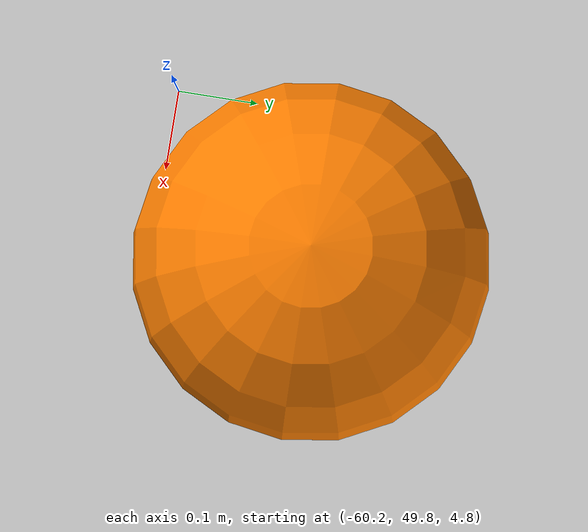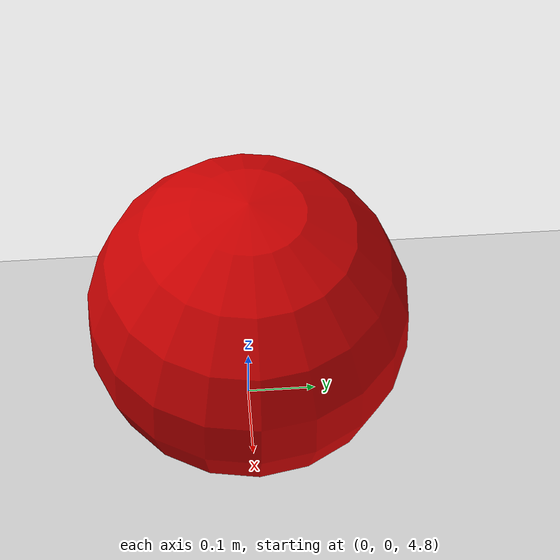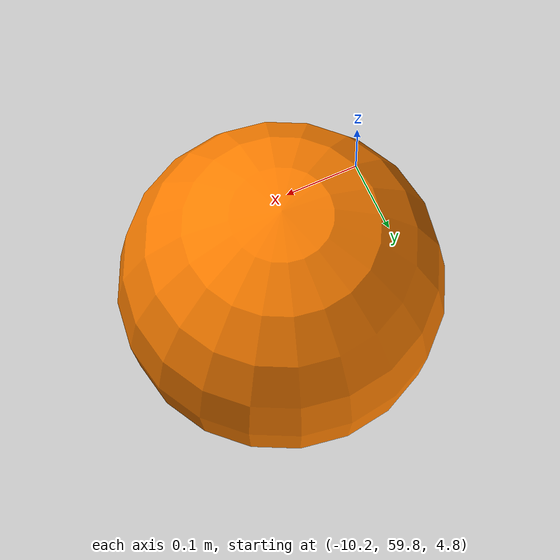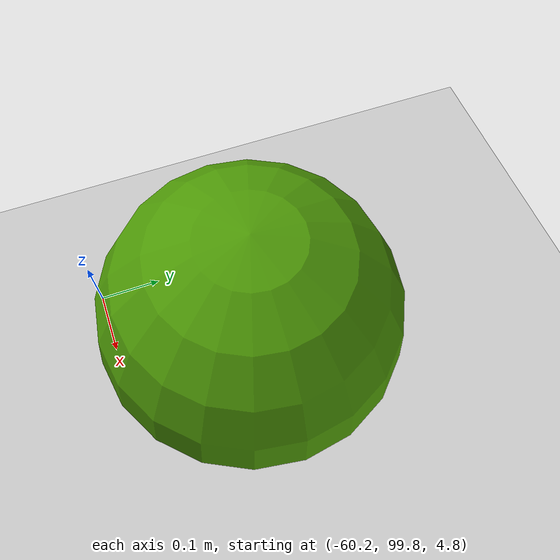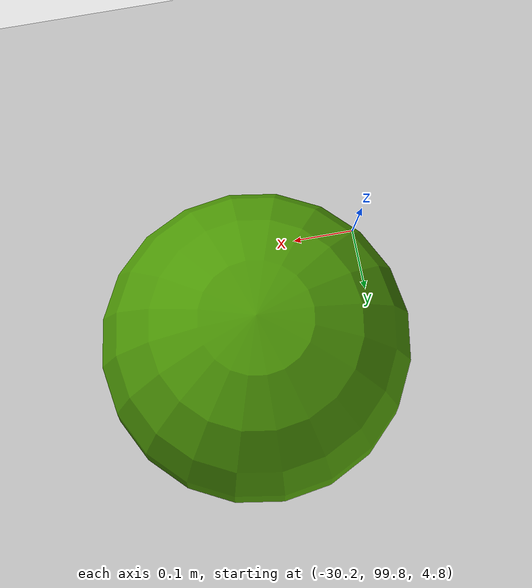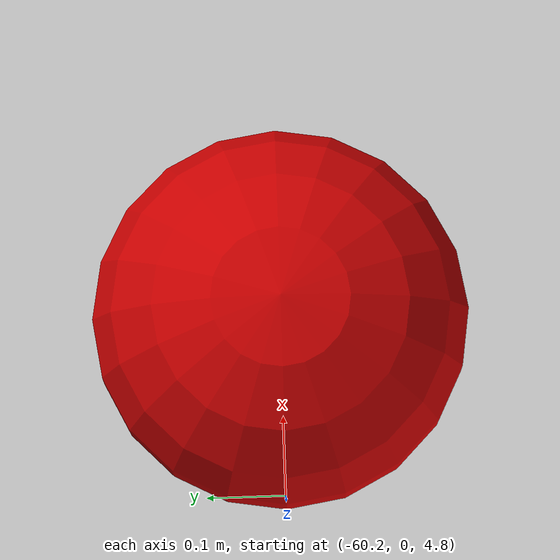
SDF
<sdf version="1.5">
 <world name="default">
  <physics type="ode">
   <ode>
    <solver><type>quick</type><iters>100</iters><sor>1.0</sor></solver>
    <constraints>
     <cfm>0.0</cfm>
     <erp>0.9</erp>
     <contact_max_correcting_vel>0.1</contact_max_correcting_vel>
     <contact_surface_layer>0.0</contact_surface_layer>
    </constraints>
   </ode>
   <real_time_update_rate>-1</real_time_update_rate>
  </physics>
  <model name="ground_plane">
   <static>true</static>
   <link name="link">
    <collision name="collision">
     <geometry><plane><normal>0 0 1</normal><size>5000 5000</size></plane></geometry>
     <surface><friction><ode><mu>1</mu><mu2>1</mu2></ode></friction></surface>
    </collision>
    <visual name="runway1">
     <pose>000 0 0.005 0 0 0</pose>
     <cast_shadows>false</cast_shadows>
     <geometry><plane><normal>0 0 1</normal><size>1829 45</size></plane></geometry>
     <material>
      <script><uri>file://media/materials/scripts/gazebo.material</uri><name>Gazebo/Runway</name></script>
     </material>
    </visual>
    <visual name="runway2">
     <pose>0 50 0.005 0 0 0</pose>
     <cast_shadows>false</cast_shadows>
     <geometry><plane><normal>0 0 1</normal><size>1829 45</size></plane></geometry>
     <material>
      <script><uri>file://media/materials/scripts/gazebo.material</uri><name>Gazebo/Runway</name></script>
     </material>
    </visual>
    <visual name="runway3">
     <pose>0 100 0.005 0 0 0</pose>
     <cast_shadows>false</cast_shadows>
     <geometry><plane><normal>0 0 1</normal><size>1829 45</size></plane></geometry>
     <material>
      <script><uri>file://media/materials/scripts/gazebo.material</uri><name>Gazebo/Runway</name></script>
     </material>
    </visual>
    <visual name="grass">
     <pose>0 0 -0.1 0 0 0</pose>
     <cast_shadows>false</cast_shadows>
     <geometry><plane><normal>0 0 1</normal><size>5000 5000</size></plane></geometry>
     <material>
      <script><uri>file://media/materials/scripts/gazebo.material</uri><name>Gazebo/Grass</name></script>
     </material>
    </visual>
   </link>
  </model>
  <include><uri>model://sun</uri></include>
  <model name="waypoint_0.0">
   <pose>0.0 0.0 5 0 0 0</pose>
   <link name="link">
    <inertial>
     <inertia><ixx>0.1</ixx><ixy>0</ixy><ixz>0</ixz><iyy>0.1</iyy><iyz>0</iyz><izz>0.1</izz></inertia>
     <mass>1</mass>
    </inertial>
    <gravity>0</gravity>
    <visual name="visual">
     <geometry><sphere><radius>0.2</radius></sphere></geometry>
     <material>
      <script><name>Gazebo/Grey</name><uri>file://media/materials/scripts/gazebo.material</uri></script>
      <shader type="pixel"><normal_map>__default__</normal_map></shader>
      <ambient>0.3 0.3 0.3 1</ambient>
      <diffuse>0.8 0.0 0.0 1</diffuse>
      <specular>0.01 0.01 0.01 1</specular>
      <emissive>0 0 0 1</emissive>
     </material>
     <transparency>0.05</transparency>
    </visual>
   </link>
   <static>0</static>
  </model>
  <model name="waypoint_0.1">
   <pose>-10.0 6.123233995736766e-16 5 0 0 0</pose>
   <link name="link">
    <inertial>
     <inertia><ixx>0.1</ixx><ixy>0</ixy><ixz>0</ixz><iyy>0.1</iyy><iyz>0</iyz><izz>0.1</izz></inertia>
     <mass>1</mass>
    </inertial>
    <gravity>0</gravity>
    <visual name="visual">
     <geometry><sphere><radius>0.2</radius></sphere></geometry>
     <material>
      <script><name>Gazebo/Grey</name><uri>file://media/materials/scripts/gazebo.material</uri></script>
      <shader type="pixel"><normal_map>__default__</normal_map></shader>
      <ambient>0.3 0.3 0.3 1</ambient>
      <diffuse>0.8 0.0 0.0 1</diffuse>
      <specular>0.01 0.01 0.01 1</specular>
      <emissive>0 0 0 1</emissive>
     </material>
     <transparency>0.05</transparency>
    </visual>
   </link>
   <static>0</static>
  </model>
  <model name="waypoint_0.2">
   <pose>-10.0 10.0 5 0 0 0</pose>
   <link name="link">
    <inertial>
     <inertia><ixx>0.1</ixx><ixy>0</ixy><ixz>0</ixz><iyy>0.1</iyy><iyz>0</iyz><izz>0.1</izz></inertia>
     <mass>1</mass>
    </inertial>
    <gravity>0</gravity>
    <visual name="visual">
     <geometry><sphere><radius>0.2</radius></sphere></geometry>
     <material>
      <script><name>Gazebo/Grey</name><uri>file://media/materials/scripts/gazebo.material</uri></script>
      <shader type="pixel"><normal_map>__default__</normal_map></shader>
      <ambient>0.3 0.3 0.3 1</ambient>
      <diffuse>0.8 0.0 0.0 1</diffuse>
      <specular>0.01 0.01 0.01 1</specular>
      <emissive>0 0 0 1</emissive>
     </material>
     <transparency>0.05</transparency>
    </visual>
   </link>
   <static>0</static>
  </model>
  <model name="waypoint_0.3">
   <pose>6.123233995736766e-16 10.0 5 0 0 0</pose>
   <link name="link">
    <inertial>
     <inertia><ixx>0.1</ixx><ixy>0</ixy><ixz>0</ixz><iyy>0.1</iyy><iyz>0</iyz><izz>0.1</izz></inertia>
     <mass>1</mass>
    </inertial>
    <gravity>0</gravity>
    <visual name="visual">
     <geometry><sphere><radius>0.2</radius></sphere></geometry>
     <material>
      <script><name>Gazebo/Grey</name><uri>file://media/materials/scripts/gazebo.material</uri></script>
      <shader type="pixel"><normal_map>__default__</normal_map></shader>
      <ambient>0.3 0.3 0.3 1</ambient>
      <diffuse>0.8 0.0 0.0 1</diffuse>
      <specular>0.01 0.01 0.01 1</specular>
      <emissive>0 0 0 1</emissive>
     </material>
     <transparency>0.05</transparency>
    </visual>
   </link>
   <static>0</static>
  </model>
  <model name="waypoint_0.4">
   <pose>0.0 0.0 5 0 0 0</pose>
   <link name="link">
    <inertial>
     <inertia><ixx>0.1</ixx><ixy>0</ixy><ixz>0</ixz><iyy>0.1</iyy><iyz>0</iyz><izz>0.1</izz></inertia>
     <mass>1</mass>
    </inertial>
    <gravity>0</gravity>
    <visual name="visual">
     <geometry><sphere><radius>0.2</radius></sphere></geometry>
     <material>
      <script><name>Gazebo/Grey</name><uri>file://media/materials/scripts/gazebo.material</uri></script>
      <shader type="pixel"><normal_map>__default__</normal_map></shader>
      <ambient>0.3 0.3 0.3 1</ambient>
      <diffuse>0.8 0.0 0.0 1</diffuse>
      <specular>0.01 0.01 0.01 1</specular>
      <emissive>0 0 0 1</emissive>
     </material>
     <transparency>0.05</transparency>
    </visual>
   </link>
   <static>0</static>
  </model>
  <model name="waypoint_1.0">
   <pose>-30.0 1.83697019872103e-15 5 0 0 0</pose>
   <link name="link">
    <inertial>
     <inertia><ixx>0.1</ixx><ixy>0</ixy><ixz>0</ixz><iyy>0.1</iyy><iyz>0</iyz><izz>0.1</izz></inertia>
     <mass>1</mass>
    </inertial>
    <gravity>0</gravity>
    <visual name="visual">
     <geometry><sphere><radius>0.2</radius></sphere></geometry>
     <material>
      <script><name>Gazebo/Grey</name><uri>file://media/materials/scripts/gazebo.material</uri></script>
      <shader type="pixel"><normal_map>__default__</normal_map></shader>
      <ambient>0.3 0.3 0.3 1</ambient>
      <diffuse>0.8 0.0 0.0 1</diffuse>
      <specular>0.01 0.01 0.01 1</specular>
      <emissive>0 0 0 1</emissive>
     </material>
     <transparency>0.05</transparency>
    </visual>
   </link>
   <static>0</static>
  </model>
  <model name="waypoint_1.1">
   <pose>-40.0 2.4492935982947065e-15 5 0 0 0</pose>
   <link name="link">
    <inertial>
     <inertia><ixx>0.1</ixx><ixy>0</ixy><ixz>0</ixz><iyy>0.1</iyy><iyz>0</iyz><izz>0.1</izz></inertia>
     <mass>1</mass>
    </inertial>
    <gravity>0</gravity>
    <visual name="visual">
     <geometry><sphere><radius>0.2</radius></sphere></geometry>
     <material>
      <script><name>Gazebo/Grey</name><uri>file://media/materials/scripts/gazebo.material</uri></script>
      <shader type="pixel"><normal_map>__default__</normal_map></shader>
      <ambient>0.3 0.3 0.3 1</ambient>
      <diffuse>0.8 0.0 0.0 1</diffuse>
      <specular>0.01 0.01 0.01 1</specular>
      <emissive>0 0 0 1</emissive>
     </material>
     <transparency>0.05</transparency>
    </visual>
   </link>
   <static>0</static>
  </model>
  <model name="waypoint_1.2">
   <pose>-40.0 10.000000000000002 5 0 0 0</pose>
   <link name="link">
    <inertial>
     <inertia><ixx>0.1</ixx><ixy>0</ixy><ixz>0</ixz><iyy>0.1</iyy><iyz>0</iyz><izz>0.1</izz></inertia>
     <mass>1</mass>
    </inertial>
    <gravity>0</gravity>
    <visual name="visual">
     <geometry><sphere><radius>0.2</radius></sphere></geometry>
     <material>
      <script><name>Gazebo/Grey</name><uri>file://media/materials/scripts/gazebo.material</uri></script>
      <shader type="pixel"><normal_map>__default__</normal_map></shader>
      <ambient>0.3 0.3 0.3 1</ambient>
      <diffuse>0.8 0.0 0.0 1</diffuse>
      <specular>0.01 0.01 0.01 1</specular>
      <emissive>0 0 0 1</emissive>
     </material>
     <transparency>0.05</transparency>
    </visual>
   </link>
   <static>0</static>
  </model>
  <model name="waypoint_1.3">
   <pose>-30.0 10.000000000000002 5 0 0 0</pose>
   <link name="link">
    <inertial>
     <inertia><ixx>0.1</ixx><ixy>0</ixy><ixz>0</ixz><iyy>0.1</iyy><iyz>0</iyz><izz>0.1</izz></inertia>
     <mass>1</mass>
    </inertial>
    <gravity>0</gravity>
    <visual name="visual">
     <geometry><sphere><radius>0.2</radius></sphere></geometry>
     <material>
      <script><name>Gazebo/Grey</name><uri>file://media/materials/scripts/gazebo.material</uri></script>
      <shader type="pixel"><normal_map>__default__</normal_map></shader>
      <ambient>0.3 0.3 0.3 1</ambient>
      <diffuse>0.8 0.0 0.0 1</diffuse>
      <specular>0.01 0.01 0.01 1</specular>
      <emissive>0 0 0 1</emissive>
     </material>
     <transparency>0.05</transparency>
    </visual>
   </link>
   <static>0</static>
  </model>
  <model name="waypoint_1.4">
   <pose>-30.0 1.83697019872103e-15 5 0 0 0</pose>
   <link name="link">
    <inertial>
     <inertia><ixx>0.1</ixx><ixy>0</ixy><ixz>0</ixz><iyy>0.1</iyy><iyz>0</iyz><izz>0.1</izz></inertia>
     <mass>1</mass>
    </inertial>
    <gravity>0</gravity>
    <visual name="visual">
     <geometry><sphere><radius>0.2</radius></sphere></geometry>
     <material>
      <script><name>Gazebo/Grey</name><uri>file://media/materials/scripts/gazebo.material</uri></script>
      <shader type="pixel"><normal_map>__default__</normal_map></shader>
      <ambient>0.3 0.3 0.3 1</ambient>
      <diffuse>0.8 0.0 0.0 1</diffuse>
      <specular>0.01 0.01 0.01 1</specular>
      <emissive>0 0 0 1</emissive>
     </material>
     <transparency>0.05</transparency>
    </visual>
   </link>
   <static>0</static>
  </model>
  <model name="waypoint_2.0">
   <pose>-60.0 3.67394039744206e-15 5 0 0 0</pose>
   <link name="link">
    <inertial>
     <inertia><ixx>0.1</ixx><ixy>0</ixy><ixz>0</ixz><iyy>0.1</iyy><iyz>0</iyz><izz>0.1</izz></inertia>
     <mass>1</mass>
    </inertial>
    <gravity>0</gravity>
    <visual name="visual">
     <geometry><sphere><radius>0.2</radius></sphere></geometry>
     <material>
      <script><name>Gazebo/Grey</name><uri>file://media/materials/scripts/gazebo.material</uri></script>
      <shader type="pixel"><normal_map>__default__</normal_map></shader>
      <ambient>0.3 0.3 0.3 1</ambient>
      <diffuse>0.8 0.0 0.0 1</diffuse>
      <specular>0.01 0.01 0.01 1</specular>
      <emissive>0 0 0 1</emissive>
     </material>
     <transparency>0.05</transparency>
    </visual>
   </link>
   <static>0</static>
  </model>
  <model name="waypoint_2.1">
   <pose>-70.0 4.2862637970157365e-15 5 0 0 0</pose>
   <link name="link">
    <inertial>
     <inertia><ixx>0.1</ixx><ixy>0</ixy><ixz>0</ixz><iyy>0.1</iyy><iyz>0</iyz><izz>0.1</izz></inertia>
     <mass>1</mass>
    </inertial>
    <gravity>0</gravity>
    <visual name="visual">
     <geometry><sphere><radius>0.2</radius></sphere></geometry>
     <material>
      <script><name>Gazebo/Grey</name><uri>file://media/materials/scripts/gazebo.material</uri></script>
      <shader type="pixel"><normal_map>__default__</normal_map></shader>
      <ambient>0.3 0.3 0.3 1</ambient>
      <diffuse>0.8 0.0 0.0 1</diffuse>
      <specular>0.01 0.01 0.01 1</specular>
      <emissive>0 0 0 1</emissive>
     </material>
     <transparency>0.05</transparency>
    </visual>
   </link>
   <static>0</static>
  </model>
  <model name="waypoint_2.2">
   <pose>-70.0 10.000000000000004 5 0 0 0</pose>
   <link name="link">
    <inertial>
     <inertia><ixx>0.1</ixx><ixy>0</ixy><ixz>0</ixz><iyy>0.1</iyy><iyz>0</iyz><izz>0.1</izz></inertia>
     <mass>1</mass>
    </inertial>
    <gravity>0</gravity>
    <visual name="visual">
     <geometry><sphere><radius>0.2</radius></sphere></geometry>
     <material>
      <script><name>Gazebo/Grey</name><uri>file://media/materials/scripts/gazebo.material</uri></script>
      <shader type="pixel"><normal_map>__default__</normal_map></shader>
      <ambient>0.3 0.3 0.3 1</ambient>
      <diffuse>0.8 0.0 0.0 1</diffuse>
      <specular>0.01 0.01 0.01 1</specular>
      <emissive>0 0 0 1</emissive>
     </material>
     <transparency>0.05</transparency>
    </visual>
   </link>
   <static>0</static>
  </model>
  <model name="waypoint_2.3">
   <pose>-60.0 10.000000000000004 5 0 0 0</pose>
   <link name="link">
    <inertial>
     <inertia><ixx>0.1</ixx><ixy>0</ixy><ixz>0</ixz><iyy>0.1</iyy><iyz>0</iyz><izz>0.1</izz></inertia>
     <mass>1</mass>
    </inertial>
    <gravity>0</gravity>
    <visual name="visual">
     <geometry><sphere><radius>0.2</radius></sphere></geometry>
     <material>
      <script><name>Gazebo/Grey</name><uri>file://media/materials/scripts/gazebo.material</uri></script>
      <shader type="pixel"><normal_map>__default__</normal_map></shader>
      <ambient>0.3 0.3 0.3 1</ambient>
      <diffuse>0.8 0.0 0.0 1</diffuse>
      <specular>0.01 0.01 0.01 1</specular>
      <emissive>0 0 0 1</emissive>
     </material>
     <transparency>0.05</transparency>
    </visual>
   </link>
   <static>0</static>
  </model>
  <model name="waypoint_2.4">
   <pose>-60.0 3.67394039744206e-15 5 0 0 0</pose>
   <link name="link">
    <inertial>
     <inertia><ixx>0.1</ixx><ixy>0</ixy><ixz>0</ixz><iyy>0.1</iyy><iyz>0</iyz><izz>0.1</izz></inertia>
     <mass>1</mass>
    </inertial>
    <gravity>0</gravity>
    <visual name="visual">
     <geometry><sphere><radius>0.2</radius></sphere></geometry>
     <material>
      <script><name>Gazebo/Grey</name><uri>file://media/materials/scripts/gazebo.material</uri></script>
      <shader type="pixel"><normal_map>__default__</normal_map></shader>
      <ambient>0.3 0.3 0.3 1</ambient>
      <diffuse>0.8 0.0 0.0 1</diffuse>
      <specular>0.01 0.01 0.01 1</specular>
      <emissive>0 0 0 1</emissive>
     </material>
     <transparency>0.05</transparency>
    </visual>
   </link>
   <static>0</static>
  </model>
  <model name="waypoint_3.0">
   <pose>3.061616997868383e-15 50.0 5 0 0 0</pose>
   <link name="link">
    <inertial>
     <inertia><ixx>0.1</ixx><ixy>0</ixy><ixz>0</ixz><iyy>0.1</iyy><iyz>0</iyz><izz>0.1</izz></inertia>
     <mass>1</mass>
    </inertial>
    <gravity>0</gravity>
    <visual name="visual">
     <geometry><sphere><radius>0.2</radius></sphere></geometry>
     <material>
      <script><name>Gazebo/Grey</name><uri>file://media/materials/scripts/gazebo.material</uri></script>
      <shader type="pixel"><normal_map>__default__</normal_map></shader>
      <ambient>0.3 0.3 0.3 1</ambient>
      <diffuse>1.0 0.5 0.0 1</diffuse>
      <specular>0.01 0.01 0.01 1</specular>
      <emissive>0 0 0 1</emissive>
     </material>
     <transparency>0.05</transparency>
    </visual>
   </link>
   <static>0</static>
  </model>
  <model name="waypoint_3.1">
   <pose>-9.999999999999996 50.0 5 0 0 0</pose>
   <link name="link">
    <inertial>
     <inertia><ixx>0.1</ixx><ixy>0</ixy><ixz>0</ixz><iyy>0.1</iyy><iyz>0</iyz><izz>0.1</izz></inertia>
     <mass>1</mass>
    </inertial>
    <gravity>0</gravity>
    <visual name="visual">
     <geometry><sphere><radius>0.2</radius></sphere></geometry>
     <material>
      <script><name>Gazebo/Grey</name><uri>file://media/materials/scripts/gazebo.material</uri></script>
      <shader type="pixel"><normal_map>__default__</normal_map></shader>
      <ambient>0.3 0.3 0.3 1</ambient>
      <diffuse>1.0 0.5 0.0 1</diffuse>
      <specular>0.01 0.01 0.01 1</specular>
      <emissive>0 0 0 1</emissive>
     </material>
     <transparency>0.05</transparency>
    </visual>
   </link>
   <static>0</static>
  </model>
  <model name="waypoint_3.2">
   <pose>-9.999999999999996 60.0 5 0 0 0</pose>
   <link name="link">
    <inertial>
     <inertia><ixx>0.1</ixx><ixy>0</ixy><ixz>0</ixz><iyy>0.1</iyy><iyz>0</iyz><izz>0.1</izz></inertia>
     <mass>1</mass>
    </inertial>
    <gravity>0</gravity>
    <visual name="visual">
     <geometry><sphere><radius>0.2</radius></sphere></geometry>
     <material>
      <script><name>Gazebo/Grey</name><uri>file://media/materials/scripts/gazebo.material</uri></script>
      <shader type="pixel"><normal_map>__default__</normal_map></shader>
      <ambient>0.3 0.3 0.3 1</ambient>
      <diffuse>1.0 0.5 0.0 1</diffuse>
      <specular>0.01 0.01 0.01 1</specular>
      <emissive>0 0 0 1</emissive>
     </material>
     <transparency>0.05</transparency>
    </visual>
   </link>
   <static>0</static>
  </model>
  <model name="waypoint_3.3">
   <pose>3.67394039744206e-15 60.0 5 0 0 0</pose>
   <link name="link">
    <inertial>
     <inertia><ixx>0.1</ixx><ixy>0</ixy><ixz>0</ixz><iyy>0.1</iyy><iyz>0</iyz><izz>0.1</izz></inertia>
     <mass>1</mass>
    </inertial>
    <gravity>0</gravity>
    <visual name="visual">
     <geometry><sphere><radius>0.2</radius></sphere></geometry>
     <material>
      <script><name>Gazebo/Grey</name><uri>file://media/materials/scripts/gazebo.material</uri></script>
      <shader type="pixel"><normal_map>__default__</normal_map></shader>
      <ambient>0.3 0.3 0.3 1</ambient>
      <diffuse>1.0 0.5 0.0 1</diffuse>
      <specular>0.01 0.01 0.01 1</specular>
      <emissive>0 0 0 1</emissive>
     </material>
     <transparency>0.05</transparency>
    </visual>
   </link>
   <static>0</static>
  </model>
  <model name="waypoint_3.4">
   <pose>3.061616997868383e-15 50.0 5 0 0 0</pose>
   <link name="link">
    <inertial>
     <inertia><ixx>0.1</ixx><ixy>0</ixy><ixz>0</ixz><iyy>0.1</iyy><iyz>0</iyz><izz>0.1</izz></inertia>
     <mass>1</mass>
    </inertial>
    <gravity>0</gravity>
    <visual name="visual">
     <geometry><sphere><radius>0.2</radius></sphere></geometry>
     <material>
      <script><name>Gazebo/Grey</name><uri>file://media/materials/scripts/gazebo.material</uri></script>
      <shader type="pixel"><normal_map>__default__</normal_map></shader>
      <ambient>0.3 0.3 0.3 1</ambient>
      <diffuse>1.0 0.5 0.0 1</diffuse>
      <specular>0.01 0.01 0.01 1</specular>
      <emissive>0 0 0 1</emissive>
     </material>
     <transparency>0.05</transparency>
    </visual>
   </link>
   <static>0</static>
  </model>
  <model name="waypoint_4.0">
   <pose>-29.999999999999996 50.0 5 0 0 0</pose>
   <link name="link">
    <inertial>
     <inertia><ixx>0.1</ixx><ixy>0</ixy><ixz>0</ixz><iyy>0.1</iyy><iyz>0</iyz><izz>0.1</izz></inertia>
     <mass>1</mass>
    </inertial>
    <gravity>0</gravity>
    <visual name="visual">
     <geometry><sphere><radius>0.2</radius></sphere></geometry>
     <material>
      <script><name>Gazebo/Grey</name><uri>file://media/materials/scripts/gazebo.material</uri></script>
      <shader type="pixel"><normal_map>__default__</normal_map></shader>
      <ambient>0.3 0.3 0.3 1</ambient>
      <diffuse>1.0 0.5 0.0 1</diffuse>
      <specular>0.01 0.01 0.01 1</specular>
      <emissive>0 0 0 1</emissive>
     </material>
     <transparency>0.05</transparency>
    </visual>
   </link>
   <static>0</static>
  </model>
  <model name="waypoint_4.1">
   <pose>-40.0 50.0 5 0 0 0</pose>
   <link name="link">
    <inertial>
     <inertia><ixx>0.1</ixx><ixy>0</ixy><ixz>0</ixz><iyy>0.1</iyy><iyz>0</iyz><izz>0.1</izz></inertia>
     <mass>1</mass>
    </inertial>
    <gravity>0</gravity>
    <visual name="visual">
     <geometry><sphere><radius>0.2</radius></sphere></geometry>
     <material>
      <script><name>Gazebo/Grey</name><uri>file://media/materials/scripts/gazebo.material</uri></script>
      <shader type="pixel"><normal_map>__default__</normal_map></shader>
      <ambient>0.3 0.3 0.3 1</ambient>
      <diffuse>1.0 0.5 0.0 1</diffuse>
      <specular>0.01 0.01 0.01 1</specular>
      <emissive>0 0 0 1</emissive>
     </material>
     <transparency>0.05</transparency>
    </visual>
   </link>
   <static>0</static>
  </model>
  <model name="waypoint_4.2">
   <pose>-39.99999999999999 60.0 5 0 0 0</pose>
   <link name="link">
    <inertial>
     <inertia><ixx>0.1</ixx><ixy>0</ixy><ixz>0</ixz><iyy>0.1</iyy><iyz>0</iyz><izz>0.1</izz></inertia>
     <mass>1</mass>
    </inertial>
    <gravity>0</gravity>
    <visual name="visual">
     <geometry><sphere><radius>0.2</radius></sphere></geometry>
     <material>
      <script><name>Gazebo/Grey</name><uri>file://media/materials/scripts/gazebo.material</uri></script>
      <shader type="pixel"><normal_map>__default__</normal_map></shader>
      <ambient>0.3 0.3 0.3 1</ambient>
      <diffuse>1.0 0.5 0.0 1</diffuse>
      <specular>0.01 0.01 0.01 1</specular>
      <emissive>0 0 0 1</emissive>
     </material>
     <transparency>0.05</transparency>
    </visual>
   </link>
   <static>0</static>
  </model>
  <model name="waypoint_4.3">
   <pose>-29.999999999999996 60.0 5 0 0 0</pose>
   <link name="link">
    <inertial>
     <inertia><ixx>0.1</ixx><ixy>0</ixy><ixz>0</ixz><iyy>0.1</iyy><iyz>0</iyz><izz>0.1</izz></inertia>
     <mass>1</mass>
    </inertial>
    <gravity>0</gravity>
    <visual name="visual">
     <geometry><sphere><radius>0.2</radius></sphere></geometry>
     <material>
      <script><name>Gazebo/Grey</name><uri>file://media/materials/scripts/gazebo.material</uri></script>
      <shader type="pixel"><normal_map>__default__</normal_map></shader>
      <ambient>0.3 0.3 0.3 1</ambient>
      <diffuse>1.0 0.5 0.0 1</diffuse>
      <specular>0.01 0.01 0.01 1</specular>
      <emissive>0 0 0 1</emissive>
     </material>
     <transparency>0.05</transparency>
    </visual>
   </link>
   <static>0</static>
  </model>
  <model name="waypoint_4.4">
   <pose>-29.999999999999996 50.0 5 0 0 0</pose>
   <link name="link">
    <inertial>
     <inertia><ixx>0.1</ixx><ixy>0</ixy><ixz>0</ixz><iyy>0.1</iyy><iyz>0</iyz><izz>0.1</izz></inertia>
     <mass>1</mass>
    </inertial>
    <gravity>0</gravity>
    <visual name="visual">
     <geometry><sphere><radius>0.2</radius></sphere></geometry>
     <material>
      <script><name>Gazebo/Grey</name><uri>file://media/materials/scripts/gazebo.material</uri></script>
      <shader type="pixel"><normal_map>__default__</normal_map></shader>
      <ambient>0.3 0.3 0.3 1</ambient>
      <diffuse>1.0 0.5 0.0 1</diffuse>
      <specular>0.01 0.01 0.01 1</specular>
      <emissive>0 0 0 1</emissive>
     </material>
     <transparency>0.05</transparency>
    </visual>
   </link>
   <static>0</static>
  </model>
  <model name="waypoint_5.0">
   <pose>-60.0 50.00000000000001 5 0 0 0</pose>
   <link name="link">
    <inertial>
     <inertia><ixx>0.1</ixx><ixy>0</ixy><ixz>0</ixz><iyy>0.1</iyy><iyz>0</iyz><izz>0.1</izz></inertia>
     <mass>1</mass>
    </inertial>
    <gravity>0</gravity>
    <visual name="visual">
     <geometry><sphere><radius>0.2</radius></sphere></geometry>
     <material>
      <script><name>Gazebo/Grey</name><uri>file://media/materials/scripts/gazebo.material</uri></script>
      <shader type="pixel"><normal_map>__default__</normal_map></shader>
      <ambient>0.3 0.3 0.3 1</ambient>
      <diffuse>1.0 0.5 0.0 1</diffuse>
      <specular>0.01 0.01 0.01 1</specular>
      <emissive>0 0 0 1</emissive>
     </material>
     <transparency>0.05</transparency>
    </visual>
   </link>
   <static>0</static>
  </model>
  <model name="waypoint_5.1">
   <pose>-70.0 50.00000000000001 5 0 0 0</pose>
   <link name="link">
    <inertial>
     <inertia><ixx>0.1</ixx><ixy>0</ixy><ixz>0</ixz><iyy>0.1</iyy><iyz>0</iyz><izz>0.1</izz></inertia>
     <mass>1</mass>
    </inertial>
    <gravity>0</gravity>
    <visual name="visual">
     <geometry><sphere><radius>0.2</radius></sphere></geometry>
     <material>
      <script><name>Gazebo/Grey</name><uri>file://media/materials/scripts/gazebo.material</uri></script>
      <shader type="pixel"><normal_map>__default__</normal_map></shader>
      <ambient>0.3 0.3 0.3 1</ambient>
      <diffuse>1.0 0.5 0.0 1</diffuse>
      <specular>0.01 0.01 0.01 1</specular>
      <emissive>0 0 0 1</emissive>
     </material>
     <transparency>0.05</transparency>
    </visual>
   </link>
   <static>0</static>
  </model>
  <model name="waypoint_5.2">
   <pose>-70.0 60.00000000000001 5 0 0 0</pose>
   <link name="link">
    <inertial>
     <inertia><ixx>0.1</ixx><ixy>0</ixy><ixz>0</ixz><iyy>0.1</iyy><iyz>0</iyz><izz>0.1</izz></inertia>
     <mass>1</mass>
    </inertial>
    <gravity>0</gravity>
    <visual name="visual">
     <geometry><sphere><radius>0.2</radius></sphere></geometry>
     <material>
      <script><name>Gazebo/Grey</name><uri>file://media/materials/scripts/gazebo.material</uri></script>
      <shader type="pixel"><normal_map>__default__</normal_map></shader>
      <ambient>0.3 0.3 0.3 1</ambient>
      <diffuse>1.0 0.5 0.0 1</diffuse>
      <specular>0.01 0.01 0.01 1</specular>
      <emissive>0 0 0 1</emissive>
     </material>
     <transparency>0.05</transparency>
    </visual>
   </link>
   <static>0</static>
  </model>
  <model name="waypoint_5.3">
   <pose>-59.99999999999999 60.00000000000001 5 0 0 0</pose>
   <link name="link">
    <inertial>
     <inertia><ixx>0.1</ixx><ixy>0</ixy><ixz>0</ixz><iyy>0.1</iyy><iyz>0</iyz><izz>0.1</izz></inertia>
     <mass>1</mass>
    </inertial>
    <gravity>0</gravity>
    <visual name="visual">
     <geometry><sphere><radius>0.2</radius></sphere></geometry>
     <material>
      <script><name>Gazebo/Grey</name><uri>file://media/materials/scripts/gazebo.material</uri></script>
      <shader type="pixel"><normal_map>__default__</normal_map></shader>
      <ambient>0.3 0.3 0.3 1</ambient>
      <diffuse>1.0 0.5 0.0 1</diffuse>
      <specular>0.01 0.01 0.01 1</specular>
      <emissive>0 0 0 1</emissive>
     </material>
     <transparency>0.05</transparency>
    </visual>
   </link>
   <static>0</static>
  </model>
  <model name="waypoint_5.4">
   <pose>-60.0 50.00000000000001 5 0 0 0</pose>
   <link name="link">
    <inertial>
     <inertia><ixx>0.1</ixx><ixy>0</ixy><ixz>0</ixz><iyy>0.1</iyy><iyz>0</iyz><izz>0.1</izz></inertia>
     <mass>1</mass>
    </inertial>
    <gravity>0</gravity>
    <visual name="visual">
     <geometry><sphere><radius>0.2</radius></sphere></geometry>
     <material>
      <script><name>Gazebo/Grey</name><uri>file://media/materials/scripts/gazebo.material</uri></script>
      <shader type="pixel"><normal_map>__default__</normal_map></shader>
      <ambient>0.3 0.3 0.3 1</ambient>
      <diffuse>1.0 0.5 0.0 1</diffuse>
      <specular>0.01 0.01 0.01 1</specular>
      <emissive>0 0 0 1</emissive>
     </material>
     <transparency>0.05</transparency>
    </visual>
   </link>
   <static>0</static>
  </model>
  <model name="waypoint_6.0">
   <pose>6.123233995736766e-15 100.0 5 0 0 0</pose>
   <link name="link">
    <inertial>
     <inertia><ixx>0.1</ixx><ixy>0</ixy><ixz>0</ixz><iyy>0.1</iyy><iyz>0</iyz><izz>0.1</izz></inertia>
     <mass>1</mass>
    </inertial>
    <gravity>0</gravity>
    <visual name="visual">
     <geometry><sphere><radius>0.2</radius></sphere></geometry>
     <material>
      <script><name>Gazebo/Grey</name><uri>file://media/materials/scripts/gazebo.material</uri></script>
      <shader type="pixel"><normal_map>__default__</normal_map></shader>
      <ambient>0.3 0.3 0.3 1</ambient>
      <diffuse>0.306 0.604 0.024 1</diffuse>
      <specular>0.01 0.01 0.01 1</specular>
      <emissive>0 0 0 1</emissive>
     </material>
     <transparency>0.05</transparency>
    </visual>
   </link>
   <static>0</static>
  </model>
  <model name="waypoint_6.1">
   <pose>-9.999999999999995 100.0 5 0 0 0</pose>
   <link name="link">
    <inertial>
     <inertia><ixx>0.1</ixx><ixy>0</ixy><ixz>0</ixz><iyy>0.1</iyy><iyz>0</iyz><izz>0.1</izz></inertia>
     <mass>1</mass>
    </inertial>
    <gravity>0</gravity>
    <visual name="visual">
     <geometry><sphere><radius>0.2</radius></sphere></geometry>
     <material>
      <script><name>Gazebo/Grey</name><uri>file://media/materials/scripts/gazebo.material</uri></script>
      <shader type="pixel"><normal_map>__default__</normal_map></shader>
      <ambient>0.3 0.3 0.3 1</ambient>
      <diffuse>0.306 0.604 0.024 1</diffuse>
      <specular>0.01 0.01 0.01 1</specular>
      <emissive>0 0 0 1</emissive>
     </material>
     <transparency>0.05</transparency>
    </visual>
   </link>
   <static>0</static>
  </model>
  <model name="waypoint_6.2">
   <pose>-9.999999999999993 110.0 5 0 0 0</pose>
   <link name="link">
    <inertial>
     <inertia><ixx>0.1</ixx><ixy>0</ixy><ixz>0</ixz><iyy>0.1</iyy><iyz>0</iyz><izz>0.1</izz></inertia>
     <mass>1</mass>
    </inertial>
    <gravity>0</gravity>
    <visual name="visual">
     <geometry><sphere><radius>0.2</radius></sphere></geometry>
     <material>
      <script><name>Gazebo/Grey</name><uri>file://media/materials/scripts/gazebo.material</uri></script>
      <shader type="pixel"><normal_map>__default__</normal_map></shader>
      <ambient>0.3 0.3 0.3 1</ambient>
      <diffuse>0.306 0.604 0.024 1</diffuse>
      <specular>0.01 0.01 0.01 1</specular>
      <emissive>0 0 0 1</emissive>
     </material>
     <transparency>0.05</transparency>
    </visual>
   </link>
   <static>0</static>
  </model>
  <model name="waypoint_6.3">
   <pose>6.735557395310443e-15 110.0 5 0 0 0</pose>
   <link name="link">
    <inertial>
     <inertia><ixx>0.1</ixx><ixy>0</ixy><ixz>0</ixz><iyy>0.1</iyy><iyz>0</iyz><izz>0.1</izz></inertia>
     <mass>1</mass>
    </inertial>
    <gravity>0</gravity>
    <visual name="visual">
     <geometry><sphere><radius>0.2</radius></sphere></geometry>
     <material>
      <script><name>Gazebo/Grey</name><uri>file://media/materials/scripts/gazebo.material</uri></script>
      <shader type="pixel"><normal_map>__default__</normal_map></shader>
      <ambient>0.3 0.3 0.3 1</ambient>
      <diffuse>0.306 0.604 0.024 1</diffuse>
      <specular>0.01 0.01 0.01 1</specular>
      <emissive>0 0 0 1</emissive>
     </material>
     <transparency>0.05</transparency>
    </visual>
   </link>
   <static>0</static>
  </model>
  <model name="waypoint_6.4">
   <pose>6.123233995736766e-15 100.0 5 0 0 0</pose>
   <link name="link">
    <inertial>
     <inertia><ixx>0.1</ixx><ixy>0</ixy><ixz>0</ixz><iyy>0.1</iyy><iyz>0</iyz><izz>0.1</izz></inertia>
     <mass>1</mass>
    </inertial>
    <gravity>0</gravity>
    <visual name="visual">
     <geometry><sphere><radius>0.2</radius></sphere></geometry>
     <material>
      <script><name>Gazebo/Grey</name><uri>file://media/materials/scripts/gazebo.material</uri></script>
      <shader type="pixel"><normal_map>__default__</normal_map></shader>
      <ambient>0.3 0.3 0.3 1</ambient>
      <diffuse>0.306 0.604 0.024 1</diffuse>
      <specular>0.01 0.01 0.01 1</specular>
      <emissive>0 0 0 1</emissive>
     </material>
     <transparency>0.05</transparency>
    </visual>
   </link>
   <static>0</static>
  </model>
  <model name="waypoint_7.0">
   <pose>-29.999999999999993 100.0 5 0 0 0</pose>
   <link name="link">
    <inertial>
     <inertia><ixx>0.1</ixx><ixy>0</ixy><ixz>0</ixz><iyy>0.1</iyy><iyz>0</iyz><izz>0.1</izz></inertia>
     <mass>1</mass>
    </inertial>
    <gravity>0</gravity>
    <visual name="visual">
     <geometry><sphere><radius>0.2</radius></sphere></geometry>
     <material>
      <script><name>Gazebo/Grey</name><uri>file://media/materials/scripts/gazebo.material</uri></script>
      <shader type="pixel"><normal_map>__default__</normal_map></shader>
      <ambient>0.3 0.3 0.3 1</ambient>
      <diffuse>0.306 0.604 0.024 1</diffuse>
      <specular>0.01 0.01 0.01 1</specular>
      <emissive>0 0 0 1</emissive>
     </material>
     <transparency>0.05</transparency>
    </visual>
   </link>
   <static>0</static>
  </model>
  <model name="waypoint_7.1">
   <pose>-39.99999999999999 100.0 5 0 0 0</pose>
   <link name="link">
    <inertial>
     <inertia><ixx>0.1</ixx><ixy>0</ixy><ixz>0</ixz><iyy>0.1</iyy><iyz>0</iyz><izz>0.1</izz></inertia>
     <mass>1</mass>
    </inertial>
    <gravity>0</gravity>
    <visual name="visual">
     <geometry><sphere><radius>0.2</radius></sphere></geometry>
     <material>
      <script><name>Gazebo/Grey</name><uri>file://media/materials/scripts/gazebo.material</uri></script>
      <shader type="pixel"><normal_map>__default__</normal_map></shader>
      <ambient>0.3 0.3 0.3 1</ambient>
      <diffuse>0.306 0.604 0.024 1</diffuse>
      <specular>0.01 0.01 0.01 1</specular>
      <emissive>0 0 0 1</emissive>
     </material>
     <transparency>0.05</transparency>
    </visual>
   </link>
   <static>0</static>
  </model>
  <model name="waypoint_7.2">
   <pose>-39.99999999999999 110.0 5 0 0 0</pose>
   <link name="link">
    <inertial>
     <inertia><ixx>0.1</ixx><ixy>0</ixy><ixz>0</ixz><iyy>0.1</iyy><iyz>0</iyz><izz>0.1</izz></inertia>
     <mass>1</mass>
    </inertial>
    <gravity>0</gravity>
    <visual name="visual">
     <geometry><sphere><radius>0.2</radius></sphere></geometry>
     <material>
      <script><name>Gazebo/Grey</name><uri>file://media/materials/scripts/gazebo.material</uri></script>
      <shader type="pixel"><normal_map>__default__</normal_map></shader>
      <ambient>0.3 0.3 0.3 1</ambient>
      <diffuse>0.306 0.604 0.024 1</diffuse>
      <specular>0.01 0.01 0.01 1</specular>
      <emissive>0 0 0 1</emissive>
     </material>
     <transparency>0.05</transparency>
    </visual>
   </link>
   <static>0</static>
  </model>
  <model name="waypoint_7.3">
   <pose>-29.999999999999993 110.0 5 0 0 0</pose>
   <link name="link">
    <inertial>
     <inertia><ixx>0.1</ixx><ixy>0</ixy><ixz>0</ixz><iyy>0.1</iyy><iyz>0</iyz><izz>0.1</izz></inertia>
     <mass>1</mass>
    </inertial>
    <gravity>0</gravity>
    <visual name="visual">
     <geometry><sphere><radius>0.2</radius></sphere></geometry>
     <material>
      <script><name>Gazebo/Grey</name><uri>file://media/materials/scripts/gazebo.material</uri></script>
      <shader type="pixel"><normal_map>__default__</normal_map></shader>
      <ambient>0.3 0.3 0.3 1</ambient>
      <diffuse>0.306 0.604 0.024 1</diffuse>
      <specular>0.01 0.01 0.01 1</specular>
      <emissive>0 0 0 1</emissive>
     </material>
     <transparency>0.05</transparency>
    </visual>
   </link>
   <static>0</static>
  </model>
  <model name="waypoint_7.4">
   <pose>-29.999999999999993 100.0 5 0 0 0</pose>
   <link name="link">
    <inertial>
     <inertia><ixx>0.1</ixx><ixy>0</ixy><ixz>0</ixz><iyy>0.1</iyy><iyz>0</iyz><izz>0.1</izz></inertia>
     <mass>1</mass>
    </inertial>
    <gravity>0</gravity>
    <visual name="visual">
     <geometry><sphere><radius>0.2</radius></sphere></geometry>
     <material>
      <script><name>Gazebo/Grey</name><uri>file://media/materials/scripts/gazebo.material</uri></script>
      <shader type="pixel"><normal_map>__default__</normal_map></shader>
      <ambient>0.3 0.3 0.3 1</ambient>
      <diffuse>0.306 0.604 0.024 1</diffuse>
      <specular>0.01 0.01 0.01 1</specular>
      <emissive>0 0 0 1</emissive>
     </material>
     <transparency>0.05</transparency>
    </visual>
   </link>
   <static>0</static>
  </model>
  <model name="waypoint_8.0">
   <pose>-59.99999999999999 100.0 5 0 0 0</pose>
   <link name="link">
    <inertial>
     <inertia><ixx>0.1</ixx><ixy>0</ixy><ixz>0</ixz><iyy>0.1</iyy><iyz>0</iyz><izz>0.1</izz></inertia>
     <mass>1</mass>
    </inertial>
    <gravity>0</gravity>
    <visual name="visual">
     <geometry><sphere><radius>0.2</radius></sphere></geometry>
     <material>
      <script><name>Gazebo/Grey</name><uri>file://media/materials/scripts/gazebo.material</uri></script>
      <shader type="pixel"><normal_map>__default__</normal_map></shader>
      <ambient>0.3 0.3 0.3 1</ambient>
      <diffuse>0.306 0.604 0.024 1</diffuse>
      <specular>0.01 0.01 0.01 1</specular>
      <emissive>0 0 0 1</emissive>
     </material>
     <transparency>0.05</transparency>
    </visual>
   </link>
   <static>0</static>
  </model>
  <model name="waypoint_8.1">
   <pose>-70.0 100.0 5 0 0 0</pose>
   <link name="link">
    <inertial>
     <inertia><ixx>0.1</ixx><ixy>0</ixy><ixz>0</ixz><iyy>0.1</iyy><iyz>0</iyz><izz>0.1</izz></inertia>
     <mass>1</mass>
    </inertial>
    <gravity>0</gravity>
    <visual name="visual">
     <geometry><sphere><radius>0.2</radius></sphere></geometry>
     <material>
      <script><name>Gazebo/Grey</name><uri>file://media/materials/scripts/gazebo.material</uri></script>
      <shader type="pixel"><normal_map>__default__</normal_map></shader>
      <ambient>0.3 0.3 0.3 1</ambient>
      <diffuse>0.306 0.604 0.024 1</diffuse>
      <specular>0.01 0.01 0.01 1</specular>
      <emissive>0 0 0 1</emissive>
     </material>
     <transparency>0.05</transparency>
    </visual>
   </link>
   <static>0</static>
  </model>
  <model name="waypoint_8.2">
   <pose>-70.0 110.0 5 0 0 0</pose>
   <link name="link">
    <inertial>
     <inertia><ixx>0.1</ixx><ixy>0</ixy><ixz>0</ixz><iyy>0.1</iyy><iyz>0</iyz><izz>0.1</izz></inertia>
     <mass>1</mass>
    </inertial>
    <gravity>0</gravity>
    <visual name="visual">
     <geometry><sphere><radius>0.2</radius></sphere></geometry>
     <material>
      <script><name>Gazebo/Grey</name><uri>file://media/materials/scripts/gazebo.material</uri></script>
      <shader type="pixel"><normal_map>__default__</normal_map></shader>
      <ambient>0.3 0.3 0.3 1</ambient>
      <diffuse>0.306 0.604 0.024 1</diffuse>
      <specular>0.01 0.01 0.01 1</specular>
      <emissive>0 0 0 1</emissive>
     </material>
     <transparency>0.05</transparency>
    </visual>
   </link>
   <static>0</static>
  </model>
  <model name="waypoint_8.3">
   <pose>-59.99999999999999 110.0 5 0 0 0</pose>
   <link name="link">
    <inertial>
     <inertia><ixx>0.1</ixx><ixy>0</ixy><ixz>0</ixz><iyy>0.1</iyy><iyz>0</iyz><izz>0.1</izz></inertia>
     <mass>1</mass>
    </inertial>
    <gravity>0</gravity>
    <visual name="visual">
     <geometry><sphere><radius>0.2</radius></sphere></geometry>
     <material>
      <script><name>Gazebo/Grey</name><uri>file://media/materials/scripts/gazebo.material</uri></script>
      <shader type="pixel"><normal_map>__default__</normal_map></shader>
      <ambient>0.3 0.3 0.3 1</ambient>
      <diffuse>0.306 0.604 0.024 1</diffuse>
      <specular>0.01 0.01 0.01 1</specular>
      <emissive>0 0 0 1</emissive>
     </material>
     <transparency>0.05</transparency>
    </visual>
   </link>
   <static>0</static>
  </model>
  <model name="waypoint_8.4">
   <pose>-59.99999999999999 100.0 5 0 0 0</pose>
   <link name="link">
    <inertial>
     <inertia><ixx>0.1</ixx><ixy>0</ixy><ixz>0</ixz><iyy>0.1</iyy><iyz>0</iyz><izz>0.1</izz></inertia>
     <mass>1</mass>
    </inertial>
    <gravity>0</gravity>
    <visual name="visual">
     <geometry><sphere><radius>0.2</radius></sphere></geometry>
     <material>
      <script><name>Gazebo/Grey</name><uri>file://media/materials/scripts/gazebo.material</uri></script>
      <shader type="pixel"><normal_map>__default__</normal_map></shader>
      <ambient>0.3 0.3 0.3 1</ambient>
      <diffuse>0.306 0.604 0.024 1</diffuse>
      <specular>0.01 0.01 0.01 1</specular>
      <emissive>0 0 0 1</emissive>
     </material>
     <transparency>0.05</transparency>
    </visual>
   </link>
   <static>0</static>
  </model>
 </world>
</sdf>
